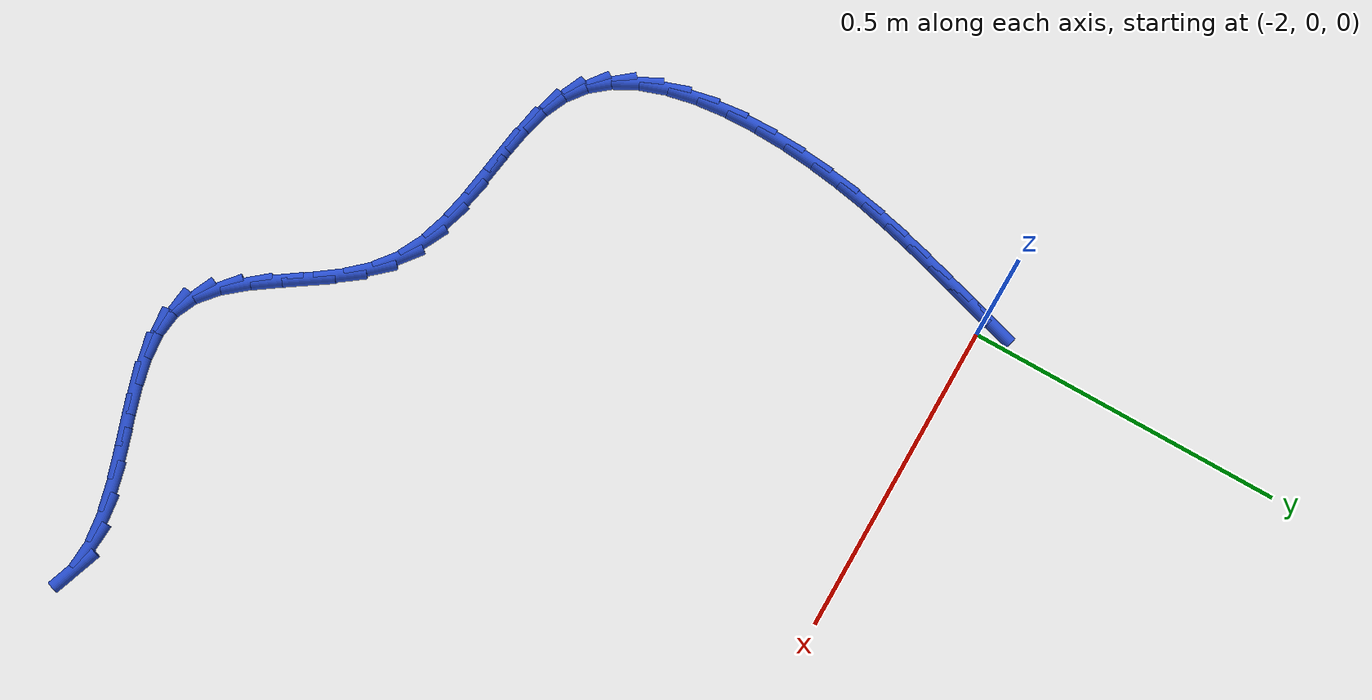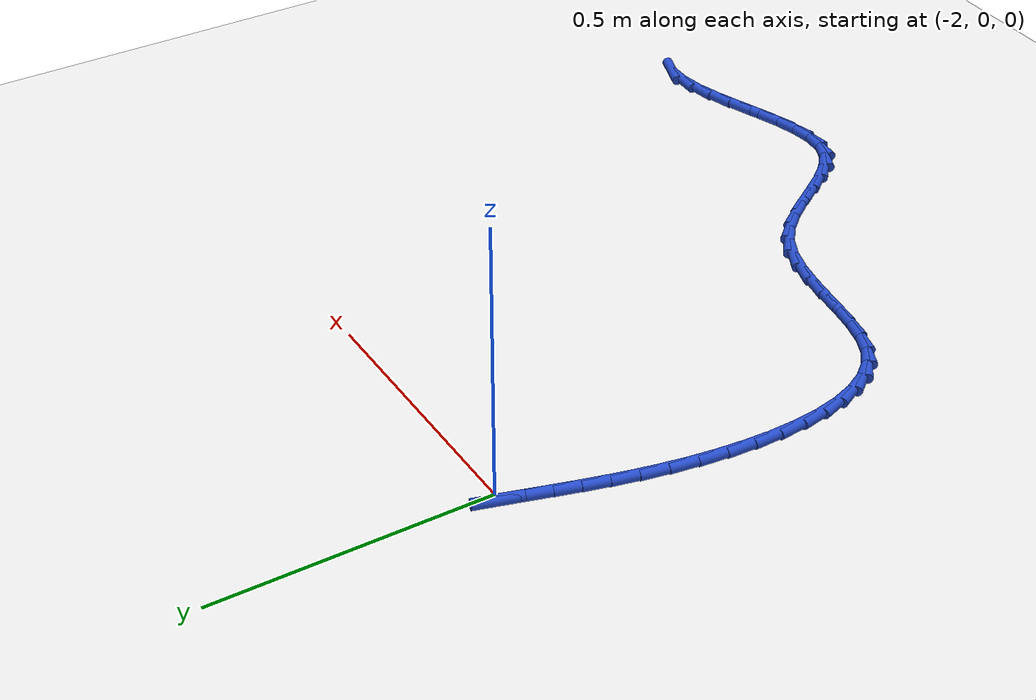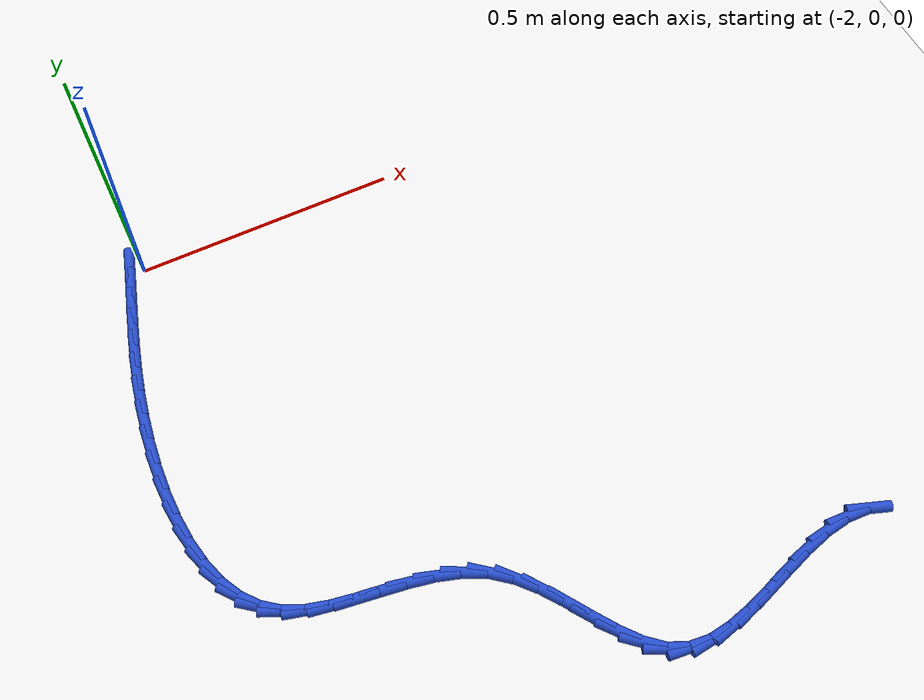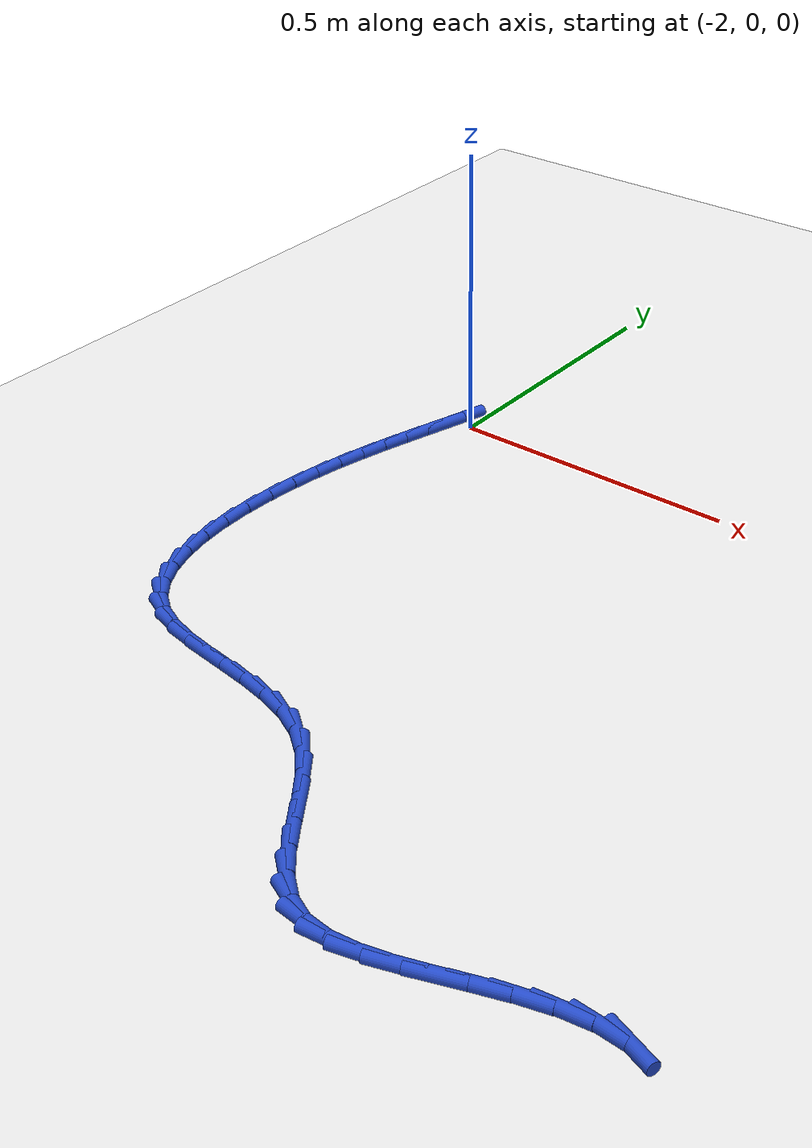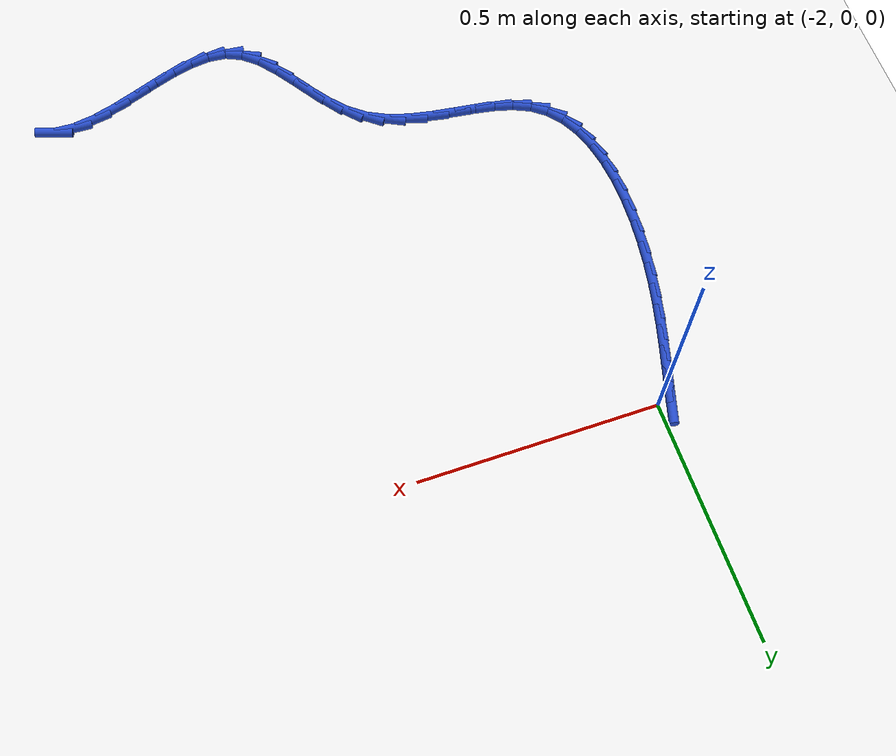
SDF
<sdf version="1.6">
 <world name="default">
  <model name="ground_plane">
   <static>1</static>
   <link name="link">
    <collision name="collision">
     <geometry><plane><normal>0 0 1</normal><size>100 100</size></plane></geometry>
     <surface><friction><ode><mu>100</mu><mu2>50</mu2></ode></friction></surface>
    </collision>
    <visual name="visual">
     <cast_shadows>0</cast_shadows>
     <geometry><plane><normal>0 0 1</normal><size>100 100</size></plane></geometry>
     <material>
      <script><uri>file://media/materials/scripts/gazebo.material</uri><name>Gazebo/WhiteGlow</name></script>
     </material>
    </visual>
   </link>
  </model>
  <model name="line">
   <link name="link_88">
    <pose>-2.0230348663277415 0.01278627117757035 0.01 0 1.57 1.28635365708335</pose>
    <collision name="collision">
     <geometry><cylinder><radius>0.01</radius><length>0.08</length></cylinder></geometry>
    </collision>
    <visual name="visual">
     <material>
      <script><name>Gazebo/Blue</name><uri>file://media/materials/scripts/gazebo.material</uri></script>
     </material>
     <geometry><cylinder><radius>0.01</radius><length>0.08</length></cylinder></geometry>
    </visual>
   </link>
   <link name="link_89">
    <pose>-2.0351953554475473 -0.028806460453181387 0.01 0 1.57 1.2806128659464728</pose>
    <collision name="collision">
     <geometry><cylinder><radius>0.01</radius><length>0.08</length></cylinder></geometry>
    </collision>
    <visual name="visual">
     <material>
      <script><name>Gazebo/Blue</name><uri>file://media/materials/scripts/gazebo.material</uri></script>
     </material>
     <geometry><cylinder><radius>0.01</radius><length>0.08</length></cylinder></geometry>
    </visual>
   </link>
   <link name="link_90">
    <pose>-2.0478165268133033 -0.07107249863261045 0.01 0 1.57 1.285034770660092</pose>
    <collision name="collision">
     <geometry><cylinder><radius>0.01</radius><length>0.08</length></cylinder></geometry>
    </collision>
    <visual name="visual">
     <material>
      <script><name>Gazebo/Blue</name><uri>file://media/materials/scripts/gazebo.material</uri></script>
     </material>
     <geometry><cylinder><radius>0.01</radius><length>0.08</length></cylinder></geometry>
    </visual>
   </link>
   <link name="link_91">
    <pose>-2.0604995281516083 -0.11424092708046442 0.01 0 1.57 1.2990019773623045</pose>
    <collision name="collision">
     <geometry><cylinder><radius>0.01</radius><length>0.08</length></cylinder></geometry>
    </collision>
    <visual name="visual">
     <material>
      <script><name>Gazebo/Blue</name><uri>file://media/materials/scripts/gazebo.material</uri></script>
     </material>
     <geometry><cylinder><radius>0.01</radius><length>0.08</length></cylinder></geometry>
    </visual>
   </link>
   <link name="link_92">
    <pose>-2.072845507189056 -0.15854082951648998 0.01 0 1.57 1.3218024991492292</pose>
    <collision name="collision">
     <geometry><cylinder><radius>0.01</radius><length>0.08</length></cylinder></geometry>
    </collision>
    <visual name="visual">
     <material>
      <script><name>Gazebo/Blue</name><uri>file://media/materials/scripts/gazebo.material</uri></script>
     </material>
     <geometry><cylinder><radius>0.01</radius><length>0.08</length></cylinder></geometry>
    </visual>
   </link>
   <link name="link_93">
    <pose>-2.084455611652244 -0.2042012896604338 0.01 0 1.57 1.3526244758456478</pose>
    <collision name="collision">
     <geometry><cylinder><radius>0.01</radius><length>0.08</length></cylinder></geometry>
    </collision>
    <visual name="visual">
     <material>
      <script><name>Gazebo/Blue</name><uri>file://media/materials/scripts/gazebo.material</uri></script>
     </material>
     <geometry><cylinder><radius>0.01</radius><length>0.08</length></cylinder></geometry>
    </visual>
   </link>
   <link name="link_94">
    <pose>-2.094930989267768 -0.2514513912320436 0.01 0 1.57 1.390514569202517</pose>
    <collision name="collision">
     <geometry><cylinder><radius>0.01</radius><length>0.08</length></cylinder></geometry>
    </collision>
    <visual name="visual">
     <material>
      <script><name>Gazebo/Blue</name><uri>file://media/materials/scripts/gazebo.material</uri></script>
     </material>
     <geometry><cylinder><radius>0.01</radius><length>0.08</length></cylinder></geometry>
    </visual>
   </link>
   <link name="link_95">
    <pose>-2.1038724273375697 -0.30050991803590477 0.01 0 1.57 1.4335396641100588</pose>
    <collision name="collision">
     <geometry><cylinder><radius>0.01</radius><length>0.08</length></cylinder></geometry>
    </collision>
    <visual name="visual">
     <material>
      <script><name>Gazebo/Blue</name><uri>file://media/materials/scripts/gazebo.material</uri></script>
     </material>
     <geometry><cylinder><radius>0.01</radius><length>0.08</length></cylinder></geometry>
    </visual>
   </link>
   <link name="link_96">
    <pose>-2.1108644472879527 -0.35113082124837613 0.01 0 1.57 1.4812664202128558</pose>
    <collision name="collision">
     <geometry><cylinder><radius>0.01</radius><length>0.08</length></cylinder></geometry>
    </collision>
    <visual name="visual">
     <material>
      <script><name>Gazebo/Blue</name><uri>file://media/materials/scripts/gazebo.material</uri></script>
     </material>
     <geometry><cylinder><radius>0.01</radius><length>0.08</length></cylinder></geometry>
    </visual>
   </link>
   <link name="link_97">
    <pose>-2.1154690351926986 -0.40242405553601623 0.01 0 1.57 1.5359769980371614</pose>
    <collision name="collision">
     <geometry><cylinder><radius>0.01</radius><length>0.08</length></cylinder></geometry>
    </collision>
    <visual name="visual">
     <material>
      <script><name>Gazebo/Blue</name><uri>file://media/materials/scripts/gazebo.material</uri></script>
     </material>
     <geometry><cylinder><radius>0.01</radius><length>0.08</length></cylinder></geometry>
    </visual>
   </link>
   <link name="link_98">
    <pose>-2.117246520878277 -0.45345224471101825 0.01 0 1.57 -1.5409153335677868</pose>
    <collision name="collision">
     <geometry><cylinder><radius>0.01</radius><length>0.08</length></cylinder></geometry>
    </collision>
    <visual name="visual">
     <material>
      <script><name>Gazebo/Blue</name><uri>file://media/materials/scripts/gazebo.material</uri></script>
     </material>
     <geometry><cylinder><radius>0.01</radius><length>0.08</length></cylinder></geometry>
    </visual>
   </link>
   <link name="link_99">
    <pose>-2.1157572341711566 -0.5032780125855766 0.01 0 1.57 -1.4622672605901679</pose>
    <collision name="collision">
     <geometry><cylinder><radius>0.01</radius><length>0.08</length></cylinder></geometry>
    </collision>
    <visual name="visual">
     <material>
      <script><name>Gazebo/Blue</name><uri>file://media/materials/scripts/gazebo.material</uri></script>
     </material>
     <geometry><cylinder><radius>0.01</radius><length>0.08</length></cylinder></geometry>
    </visual>
   </link>
   <link name="link_100">
    <pose>-2.1105615048978077 -0.5509639829718826 0.01 0 1.57 -1.3643625385766562</pose>
    <collision name="collision">
     <geometry><cylinder><radius>0.01</radius><length>0.08</length></cylinder></geometry>
    </collision>
    <visual name="visual">
     <material>
      <script><name>Gazebo/Blue</name><uri>file://media/materials/scripts/gazebo.material</uri></script>
     </material>
     <geometry><cylinder><radius>0.01</radius><length>0.08</length></cylinder></geometry>
    </visual>
   </link>
   <link name="link_101">
    <pose>-2.1012196628847004 -0.5955727796821312 0.01 0 1.57 -1.24028743226745</pose>
    <collision name="collision">
     <geometry><cylinder><radius>0.01</radius><length>0.08</length></cylinder></geometry>
    </collision>
    <visual name="visual">
     <material>
      <script><name>Gazebo/Blue</name><uri>file://media/materials/scripts/gazebo.material</uri></script>
     </material>
     <geometry><cylinder><radius>0.01</radius><length>0.08</length></cylinder></geometry>
    </visual>
   </link>
   <link name="link_102">
    <pose>-2.087292037958303 -0.6361670265285148 0.01 0 1.57 -1.082066518433263</pose>
    <collision name="collision">
     <geometry><cylinder><radius>0.01</radius><length>0.08</length></cylinder></geometry>
    </collision>
    <visual name="visual">
     <material>
      <script><name>Gazebo/Blue</name><uri>file://media/materials/scripts/gazebo.material</uri></script>
     </material>
     <geometry><cylinder><radius>0.01</radius><length>0.08</length></cylinder></geometry>
    </visual>
   </link>
   <link name="link_103">
    <pose>-2.068338959945086 -0.6718093473232277 0.01 0 1.57 -0.8835622900111554</pose>
    <collision name="collision">
     <geometry><cylinder><radius>0.01</radius><length>0.08</length></cylinder></geometry>
    </collision>
    <visual name="visual">
     <material>
      <script><name>Gazebo/Blue</name><uri>file://media/materials/scripts/gazebo.material</uri></script>
     </material>
     <geometry><cylinder><radius>0.01</radius><length>0.08</length></cylinder></geometry>
    </visual>
   </link>
   <link name="link_104">
    <pose>-2.043920758671518 -0.7015623658784634 0.01 0 1.57 -0.647571603708779</pose>
    <collision name="collision">
     <geometry><cylinder><radius>0.01</radius><length>0.08</length></cylinder></geometry>
    </collision>
    <visual name="visual">
     <material>
      <script><name>Gazebo/Blue</name><uri>file://media/materials/scripts/gazebo.material</uri></script>
     </material>
     <geometry><cylinder><radius>0.01</radius><length>0.08</length></cylinder></geometry>
    </visual>
   </link>
   <link name="link_105">
    <pose>-2.0136017455526005 -0.7244950507074239 0.01 0 1.57 -0.4183630918391135</pose>
    <collision name="collision">
     <geometry><cylinder><radius>0.01</radius><length>0.08</length></cylinder></geometry>
    </collision>
    <visual name="visual">
     <material>
      <script><name>Gazebo/Blue</name><uri>file://media/materials/scripts/gazebo.material</uri></script>
     </material>
     <geometry><cylinder><radius>0.01</radius><length>0.08</length></cylinder></geometry>
    </visual>
   </link>
   <link name="link_106">
    <pose>-1.9774938498634134 -0.7405490048416203 0.01 0 1.57 -0.2611108854334105</pose>
    <collision name="collision">
     <geometry><cylinder><radius>0.01</radius><length>0.08</length></cylinder></geometry>
    </collision>
    <visual name="visual">
     <material>
      <script><name>Gazebo/Blue</name><uri>file://media/materials/scripts/gazebo.material</uri></script>
     </material>
     <geometry><cylinder><radius>0.01</radius><length>0.08</length></cylinder></geometry>
    </visual>
   </link>
   <link name="link_107">
    <pose>-1.936809950924176 -0.7514202061829935 0.01 0 1.57 -0.17124352792963068</pose>
    <collision name="collision">
     <geometry><cylinder><radius>0.01</radius><length>0.08</length></cylinder></geometry>
    </collision>
    <visual name="visual">
     <material>
      <script><name>Gazebo/Blue</name><uri>file://media/materials/scripts/gazebo.material</uri></script>
     </material>
     <geometry><cylinder><radius>0.01</radius><length>0.08</length></cylinder></geometry>
    </visual>
   </link>
   <link name="link_108">
    <pose>-1.8928948002410853 -0.759014772276247 0.01 0 1.57 -0.1350640247850489</pose>
    <collision name="collision">
     <geometry><cylinder><radius>0.01</radius><length>0.08</length></cylinder></geometry>
    </collision>
    <visual name="visual">
     <material>
      <script><name>Gazebo/Blue</name><uri>file://media/materials/scripts/gazebo.material</uri></script>
     </material>
     <geometry><cylinder><radius>0.01</radius><length>0.08</length></cylinder></geometry>
    </visual>
   </link>
   <link name="link_109">
    <pose>-1.8470931493203362 -0.765238820666083 0.01 0 1.57 -0.14483860859616107</pose>
    <collision name="collision">
     <geometry><cylinder><radius>0.01</radius><length>0.08</length></cylinder></geometry>
    </collision>
    <visual name="visual">
     <material>
      <script><name>Gazebo/Blue</name><uri>file://media/materials/scripts/gazebo.material</uri></script>
     </material>
     <geometry><cylinder><radius>0.01</radius><length>0.08</length></cylinder></geometry>
    </visual>
   </link>
   <link name="link_110">
    <pose>-1.8007497496681255 -0.7719984688972048 0.01 0 1.57 -0.19936442439050392</pose>
    <collision name="collision">
     <geometry><cylinder><radius>0.01</radius><length>0.08</length></cylinder></geometry>
    </collision>
    <visual name="visual">
     <material>
      <script><name>Gazebo/Blue</name><uri>file://media/materials/scripts/gazebo.material</uri></script>
     </material>
     <geometry><cylinder><radius>0.01</radius><length>0.08</length></cylinder></geometry>
    </visual>
   </link>
   <link name="link_111">
    <pose>-1.7552093527906492 -0.781199834514315 0.01 0 1.57 -0.30265390028833766</pose>
    <collision name="collision">
     <geometry><cylinder><radius>0.01</radius><length>0.08</length></cylinder></geometry>
    </collision>
    <visual name="visual">
     <material>
      <script><name>Gazebo/Blue</name><uri>file://media/materials/scripts/gazebo.material</uri></script>
     </material>
     <geometry><cylinder><radius>0.01</radius><length>0.08</length></cylinder></geometry>
    </visual>
   </link>
   <link name="link_112">
    <pose>-1.711816710194103 -0.7947490350621161 0.01 0 1.57 -0.4606976109878713</pose>
    <collision name="collision">
     <geometry><cylinder><radius>0.01</radius><length>0.08</length></cylinder></geometry>
    </collision>
    <visual name="visual">
     <material>
      <script><name>Gazebo/Blue</name><uri>file://media/materials/scripts/gazebo.material</uri></script>
     </material>
     <geometry><cylinder><radius>0.01</radius><length>0.08</length></cylinder></geometry>
    </visual>
   </link>
   <link name="link_113">
    <pose>-1.6719165733846835 -0.8145521880853115 0.01 0 1.57 -0.6667256502316932</pose>
    <collision name="collision">
     <geometry><cylinder><radius>0.01</radius><length>0.08</length></cylinder></geometry>
    </collision>
    <visual name="visual">
     <material>
      <script><name>Gazebo/Blue</name><uri>file://media/materials/scripts/gazebo.material</uri></script>
     </material>
     <geometry><cylinder><radius>0.01</radius><length>0.08</length></cylinder></geometry>
    </visual>
   </link>
   <link name="link_114">
    <pose>-1.6367069979776496 -0.8422599548615705 0.01 0 1.57 -0.8398780244227472</pose>
    <collision name="collision">
     <geometry><cylinder><radius>0.01</radius><length>0.08</length></cylinder></geometry>
    </collision>
    <visual name="visual">
     <material>
      <script><name>Gazebo/Blue</name><uri>file://media/materials/scripts/gazebo.material</uri></script>
     </material>
     <geometry><cylinder><radius>0.01</radius><length>0.08</length></cylinder></geometry>
    </visual>
   </link>
   <link name="link_115">
    <pose>-1.6057899444909332 -0.8767435562030582 0.01 0 1.57 -0.9410120808019339</pose>
    <collision name="collision">
     <geometry><cylinder><radius>0.01</radius><length>0.08</length></cylinder></geometry>
    </collision>
    <visual name="visual">
     <material>
      <script><name>Gazebo/Blue</name><uri>file://media/materials/scripts/gazebo.material</uri></script>
     </material>
     <geometry><cylinder><radius>0.01</radius><length>0.08</length></cylinder></geometry>
    </visual>
   </link>
   <link name="link_116">
    <pose>-1.5777872414060432 -0.9151674107093744 0.01 0 1.57 -0.9802576628675256</pose>
    <collision name="collision">
     <geometry><cylinder><radius>0.01</radius><length>0.08</length></cylinder></geometry>
    </collision>
    <visual name="visual">
     <material>
      <script><name>Gazebo/Blue</name><uri>file://media/materials/scripts/gazebo.material</uri></script>
     </material>
     <geometry><cylinder><radius>0.01</radius><length>0.08</length></cylinder></geometry>
    </visual>
   </link>
   <link name="link_117">
    <pose>-1.5513064724368602 -0.9546711311376422 0.01 0 1.57 -0.96104933914816</pose>
    <collision name="collision">
     <geometry><cylinder><radius>0.01</radius><length>0.08</length></cylinder></geometry>
    </collision>
    <visual name="visual">
     <material>
      <script><name>Gazebo/Blue</name><uri>file://media/materials/scripts/gazebo.material</uri></script>
     </material>
     <geometry><cylinder><radius>0.01</radius><length>0.08</length></cylinder></geometry>
    </visual>
   </link>
   <link name="link_118">
    <pose>-1.524955221297265 -0.9923943302449854 0.01 0 1.57 -0.8752455917500147</pose>
    <collision name="collision">
     <geometry><cylinder><radius>0.01</radius><length>0.08</length></cylinder></geometry>
    </collision>
    <visual name="visual">
     <material>
      <script><name>Gazebo/Blue</name><uri>file://media/materials/scripts/gazebo.material</uri></script>
     </material>
     <geometry><cylinder><radius>0.01</radius><length>0.08</length></cylinder></geometry>
    </visual>
   </link>
   <link name="link_119">
    <pose>-1.497341071701138 -1.0254766207885262 0.01 0 1.57 -0.7016476860429541</pose>
    <collision name="collision">
     <geometry><cylinder><radius>0.01</radius><length>0.08</length></cylinder></geometry>
    </collision>
    <visual name="visual">
     <material>
      <script><name>Gazebo/Blue</name><uri>file://media/materials/scripts/gazebo.material</uri></script>
     </material>
     <geometry><cylinder><radius>0.01</radius><length>0.08</length></cylinder></geometry>
    </visual>
   </link>
   <link name="link_120">
    <pose>-1.46707160736236 -1.0510576155253886 0.01 0 1.57 -0.41837469025063945</pose>
    <collision name="collision">
     <geometry><cylinder><radius>0.01</radius><length>0.08</length></cylinder></geometry>
    </collision>
    <visual name="visual">
     <material>
      <script><name>Gazebo/Blue</name><uri>file://media/materials/scripts/gazebo.material</uri></script>
     </material>
     <geometry><cylinder><radius>0.01</radius><length>0.08</length></cylinder></geometry>
    </visual>
   </link>
   <link name="link_121">
    <pose>-1.4327687607838264 -1.0663095021522322 0.01 0 1.57 -0.10441886567040526</pose>
    <collision name="collision">
     <geometry><cylinder><radius>0.01</radius><length>0.08</length></cylinder></geometry>
    </collision>
    <visual name="visual">
     <material>
      <script><name>Gazebo/Blue</name><uri>file://media/materials/scripts/gazebo.material</uri></script>
     </material>
     <geometry><cylinder><radius>0.01</radius><length>0.08</length></cylinder></geometry>
    </visual>
   </link>
   <link name="link_122">
    <pose>-1.3939248113876321 -1.0703803492737758 0.01 0 1.57 0.11438670575327456</pose>
    <collision name="collision">
     <geometry><cylinder><radius>0.01</radius><length>0.08</length></cylinder></geometry>
    </collision>
    <visual name="visual">
     <material>
      <script><name>Gazebo/Blue</name><uri>file://media/materials/scripts/gazebo.material</uri></script>
     </material>
     <geometry><cylinder><radius>0.01</radius><length>0.08</length></cylinder></geometry>
    </visual>
   </link>
   <link name="link_123">
    <pose>-1.3513865206358433 -1.0654932007075628 0.01 0 1.57 0.24578845377232977</pose>
    <collision name="collision">
     <geometry><cylinder><radius>0.01</radius><length>0.08</length></cylinder></geometry>
    </collision>
    <visual name="visual">
     <material>
      <script><name>Gazebo/Blue</name><uri>file://media/materials/scripts/gazebo.material</uri></script>
     </material>
     <geometry><cylinder><radius>0.01</radius><length>0.08</length></cylinder></geometry>
    </visual>
   </link>
   <link name="link_124">
    <pose>-1.3061178032214906 -1.0541370641382741 0.01 0 1.57 0.3151866824632634</pose>
    <collision name="collision">
     <geometry><cylinder><radius>0.01</radius><length>0.08</length></cylinder></geometry>
    </collision>
    <visual name="visual">
     <material>
      <script><name>Gazebo/Blue</name><uri>file://media/materials/scripts/gazebo.material</uri></script>
     </material>
     <geometry><cylinder><radius>0.01</radius><length>0.08</length></cylinder></geometry>
    </visual>
   </link>
   <link name="link_125">
    <pose>-1.2590825738376066 -1.0388009472505917 0.01 0 1.57 0.3382354805349454</pose>
    <collision name="collision">
     <geometry><cylinder><radius>0.01</radius><length>0.08</length></cylinder></geometry>
    </collision>
    <visual name="visual">
     <material>
      <script><name>Gazebo/Blue</name><uri>file://media/materials/scripts/gazebo.material</uri></script>
     </material>
     <geometry><cylinder><radius>0.01</radius><length>0.08</length></cylinder></geometry>
    </visual>
   </link>
   <link name="link_126">
    <pose>-1.2112447471772212 -1.021973857729197 0.01 0 1.57 0.3205586405554939</pose>
    <collision name="collision">
     <geometry><cylinder><radius>0.01</radius><length>0.08</length></cylinder></geometry>
    </collision>
    <visual name="visual">
     <material>
      <script><name>Gazebo/Blue</name><uri>file://media/materials/scripts/gazebo.material</uri></script>
     </material>
     <geometry><cylinder><radius>0.01</radius><length>0.08</length></cylinder></geometry>
    </visual>
   </link>
   <link name="link_127">
    <pose>-1.163568237933368 -1.0061448032587716 0.01 0 1.57 0.2591646198318032</pose>
    <collision name="collision">
     <geometry><cylinder><radius>0.01</radius><length>0.08</length></cylinder></geometry>
    </collision>
    <visual name="visual">
     <material>
      <script><name>Gazebo/Blue</name><uri>file://media/materials/scripts/gazebo.material</uri></script>
     </material>
     <geometry><cylinder><radius>0.01</radius><length>0.08</length></cylinder></geometry>
    </visual>
   </link>
   <link name="link_128">
    <pose>-1.117016960799078 -0.9938027915239978 0.01 0 1.57 0.14221065218653675</pose>
    <collision name="collision">
     <geometry><cylinder><radius>0.01</radius><length>0.08</length></cylinder></geometry>
    </collision>
    <visual name="visual">
     <material>
      <script><name>Gazebo/Blue</name><uri>file://media/materials/scripts/gazebo.material</uri></script>
     </material>
     <geometry><cylinder><radius>0.01</radius><length>0.08</length></cylinder></geometry>
    </visual>
   </link>
   <link name="link_129">
    <pose>-1.0725548304673824 -0.987436830209556 0.01 0 1.57 -0.05064836363369559</pose>
    <collision name="collision">
     <geometry><cylinder><radius>0.01</radius><length>0.08</length></cylinder></geometry>
    </collision>
    <visual name="visual">
     <material>
      <script><name>Gazebo/Blue</name><uri>file://media/materials/scripts/gazebo.material</uri></script>
     </material>
     <geometry><cylinder><radius>0.01</radius><length>0.08</length></cylinder></geometry>
    </visual>
   </link>
   <link name="link_130">
    <pose>-1.0311457616313136 -0.9895359270001286 0.01 0 1.57 -0.33586287298919276</pose>
    <collision name="collision">
     <geometry><cylinder><radius>0.01</radius><length>0.08</length></cylinder></geometry>
    </collision>
    <visual name="visual">
     <material>
      <script><name>Gazebo/Blue</name><uri>file://media/materials/scripts/gazebo.material</uri></script>
     </material>
     <geometry><cylinder><radius>0.01</radius><length>0.08</length></cylinder></geometry>
    </visual>
   </link>
  </model>
 </world>
</sdf>
